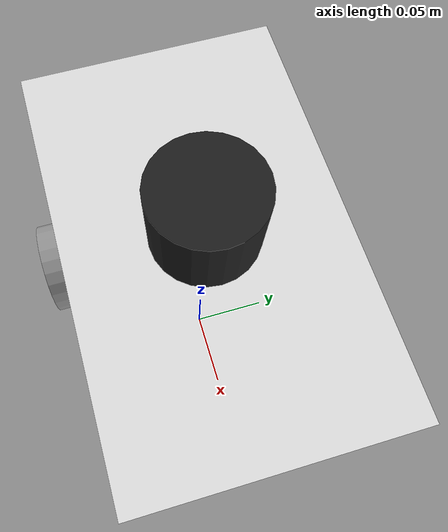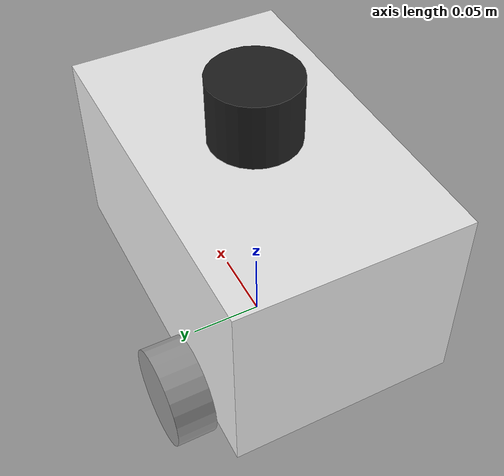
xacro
<?xml version="1.0"?>
<robot xmlns:xacro="http://www.ros.org/wiki/xacro">
    <xacro:property name="base_length" value="0.243"/>
    <xacro:property name="base_width" value="0.15"/>
    <xacro:property name="base_height" value="0.13"/>
    <xacro:property name="wheel_radius" value="0.0325"/>
    <xacro:property name="wheel_length" value="0.026"/>
    <xacro:property name="caster_radius" value="${wheel_radius / 2.0}"/>

    <link name="base_footprint"/>

    <link name="base_link">
        <visual>
            <geometry>
                <box size="${base_length} ${base_width} ${base_height}"/>
            </geometry>
            <origin xyz="0 0 ${base_height / 2.0}" rpy="0 0 0"/>
            <material name="white"/>
        </visual>
        <xacro:box_inertia m="5.0" l="${2*base_length}" w="${2*base_width}" h="${2*base_height}"
         xyz="0 0 ${2*base_height / 2.0}" rpy="0 0 0" />
        <collision>
            <geometry>
                <box size="${base_length} ${base_width} ${base_height}"/>
            </geometry>
            <origin xyz="0 0 ${base_height / 2.0}" rpy="0 0 0"/>
        </collision>
    </link>

    <xacro:macro name="wheel_link" params="prefix">
        <link name="${prefix}_wheel_link">
            <visual>
                <geometry>
                    <cylinder radius="${wheel_radius}" length="${wheel_length}"/>
                </geometry>
                <origin xyz="0 0 0" rpy="${pi/2.0} 0 0"/>
                <material name ="grey"/>
            </visual>
            <xacro:cylinder_inertia m="1.0" r="${2*wheel_radius}" h="${2*wheel_length}" xyz="0 0 0" rpy="${pi/2.0} 0 0"/>
            <collision>
                <geometry>
                    <cylinder radius="${wheel_radius}" length="${wheel_length}"/>
                </geometry>
                <origin xyz="0 0 0" rpy="${pi/2.0} 0 0"/>
            </collision>
        </link>
    </xacro:macro>

    <xacro:wheel_link prefix="left"/>
    <xacro:wheel_link prefix="right"/>

    <link name="caster_wheel_link">
        <visual>
            <geometry>
                <sphere radius="${caster_radius}"/>
            </geometry>
            <origin xyz="0 0 0" rpy="0 0 0"/>
            <material name="grey"/>
        </visual>
        <xacro:sphere_inertia m="0.5" r="${2*caster_radius}" xyz="0 0 0" rpy="0 0 0" />
        <collision>
            <geometry>
                <sphere radius="${caster_radius}"/>
            </geometry>
            <origin xyz="0 0 0" rpy="0 0 0"/>
        </collision>
    </link>

    <joint name="base_joint" type="fixed">
        <parent link="base_footprint"/>
        <child link="base_link"/>
        <origin xyz="0 0 ${wheel_radius}" rpy="0 0 0"/>
    </joint>

    <joint name="base_right_wheel_joint" type="continuous">
        <parent link="base_link"/>
        <child link="right_wheel_link"/>
        <origin xyz="${-base_length / 4.0} ${-((base_width / 2.0) + (wheel_length/2.0))} 0" rpy="0 0 0"/>
        <axis xyz="0 1 0"/>
        <limit velocity="100" effort="100"/>
    </joint>

    <joint name="base_left_wheel_joint" type="continuous">
        <parent link="base_link"/>
        <child link="left_wheel_link"/>
        <origin xyz="${-base_length / 4.0} ${(base_width / 2.0) + (wheel_length/2.0)} 0" rpy="0 0 0"/>
        <axis xyz="0 1 0"/>
        <limit velocity="100" effort="100"/>
    </joint>

    <joint name="base_caster_wheel_joint" type="fixed">
        <parent link="base_link"/>
        <child link="caster_wheel_link"/>
        <origin xyz="${base_length / 3.0} 0 ${-caster_radius}" rpy="0 0 0"/>
    </joint>

    <!-- LiDAR Link -->
    <link name="lidar_link">
    <visual>
        <geometry>
        <cylinder length="0.05" radius="0.03"/> <!-- adjust size if needed -->
        </geometry>
        <material name="black"/>
    </visual>
    </link>

    <!-- LiDAR Joint -->
    <joint name="lidar_joint" type="fixed">
    <parent link="base_link"/> <!-- or chassis_link depending on your robot -->
    <child link="lidar_link"/>
    <origin xyz="0 0 0.15" rpy="0 0 0"/> <!-- adjust height to be above chassis -->
    </joint>

</robot>
